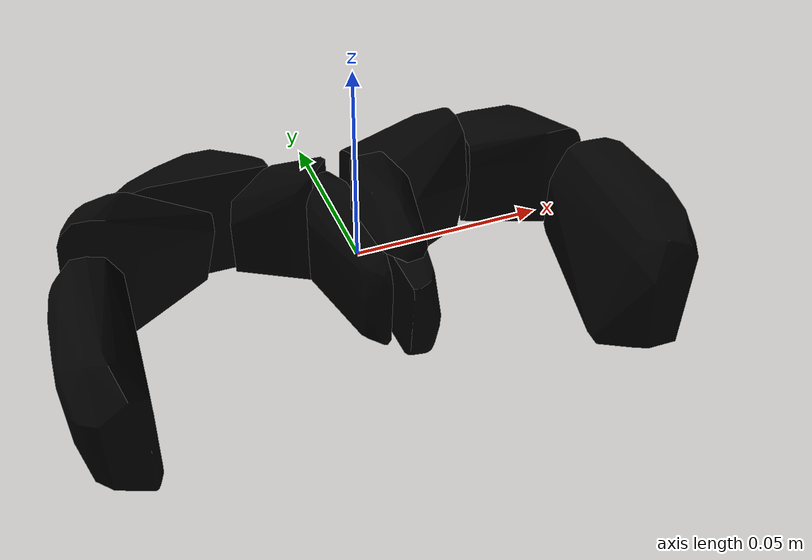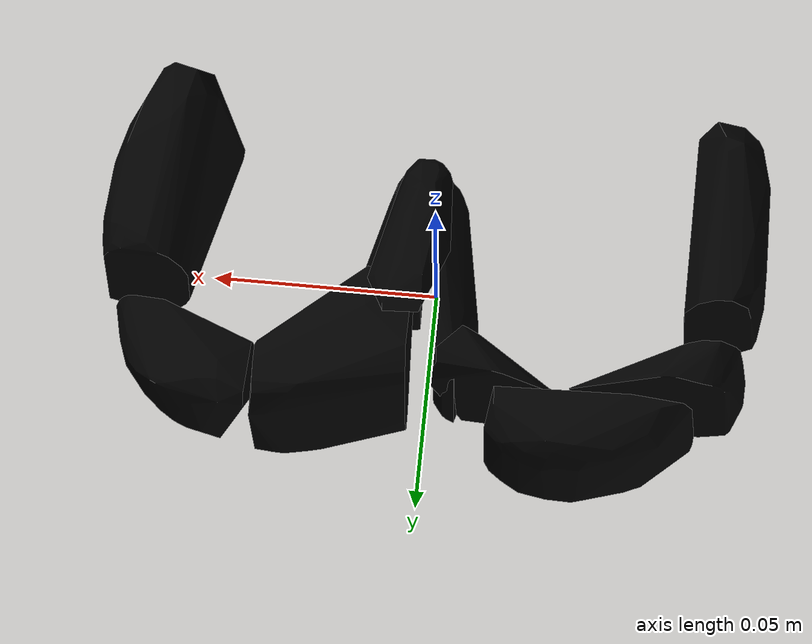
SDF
<?xml version="1.0"?>
<sdf version="1.7">
  <model name="t_shape">
    <link name="3_shape_video">
      <inertial>
        <pose>0 0 0 0 0 0</pose>
        <mass>1.0</mass>
        <!-- Inertia values were calculated to be consistent with the mass and
             geometry size, assuming a uniform density. -->
        <inertia>
            <ixx>0.003</ixx>
            <iyy>0.003 </iyy>
            <izz>0.006 </izz>
            <ixy>0.0</ixy>
            <ixz>0.0</ixz>
            <iyz>0.0</iyz>
        </inertia>
      </inertial>
      <visual name="convex_0">
  <pose>0 0 0 0 0 0</pose>
  <geometry>
    <mesh>
      <uri>3_shape_video_convex_0.obj</uri>
    </mesh>
  </geometry>
  <material>
    <diffuse>0 0 0 1</diffuse>
  </material>
</visual>
<collision name="convex_0_volume">
  <pose>0 0 0 0 0 0</pose>
  <geometry>
    <mesh>
      <uri>3_shape_video_convex_0.obj</uri>
    </mesh>
  </geometry>
  <drake:proximity_properties xmlns:drake="uri:drake">
    <drake:compliant_hydroelastic/>
    <drake:hydroelastic_modulus>3.0e7</drake:hydroelastic_modulus>
    <drake:mesh_resolution_hint>0.18</drake:mesh_resolution_hint>
    <drake:hunt_crossley_dissipation>10</drake:hunt_crossley_dissipation>
    <drake:mu_dynamic>0.3</drake:mu_dynamic>
  </drake:proximity_properties>
</collision>
<visual name="convex_1">
  <pose>0 0 0 0 0 0</pose>
  <geometry>
    <mesh>
      <uri>3_shape_video_convex_1.obj</uri>
    </mesh>
  </geometry>
  <material>
    <diffuse>0 0 0 1</diffuse>
  </material>
</visual>
<collision name="convex_1_volume">
  <pose>0 0 0 0 0 0</pose>
  <geometry>
    <mesh>
      <uri>3_shape_video_convex_1.obj</uri>
    </mesh>
  </geometry>
  <drake:proximity_properties xmlns:drake="uri:drake">
    <drake:compliant_hydroelastic/>
    <drake:hydroelastic_modulus>3.0e7</drake:hydroelastic_modulus>
    <drake:mesh_resolution_hint>0.18</drake:mesh_resolution_hint>
    <drake:hunt_crossley_dissipation>10</drake:hunt_crossley_dissipation>
    <drake:mu_dynamic>0.3</drake:mu_dynamic>
  </drake:proximity_properties>
</collision>
<visual name="convex_2">
  <pose>0 0 0 0 0 0</pose>
  <geometry>
    <mesh>
      <uri>3_shape_video_convex_2.obj</uri>
    </mesh>
  </geometry>
  <material>
    <diffuse>0 0 0 1</diffuse>
  </material>
</visual>
<collision name="convex_2_volume">
  <pose>0 0 0 0 0 0</pose>
  <geometry>
    <mesh>
      <uri>3_shape_video_convex_2.obj</uri>
    </mesh>
  </geometry>
  <drake:proximity_properties xmlns:drake="uri:drake">
    <drake:compliant_hydroelastic/>
    <drake:hydroelastic_modulus>3.0e7</drake:hydroelastic_modulus>
    <drake:mesh_resolution_hint>0.18</drake:mesh_resolution_hint>
    <drake:hunt_crossley_dissipation>10</drake:hunt_crossley_dissipation>
    <drake:mu_dynamic>0.3</drake:mu_dynamic>
  </drake:proximity_properties>
</collision>
<visual name="convex_3">
  <pose>0 0 0 0 0 0</pose>
  <geometry>
    <mesh>
      <uri>3_shape_video_convex_3.obj</uri>
    </mesh>
  </geometry>
  <material>
    <diffuse>0 0 0 1</diffuse>
  </material>
</visual>
<collision name="convex_3_volume">
  <pose>0 0 0 0 0 0</pose>
  <geometry>
    <mesh>
      <uri>3_shape_video_convex_3.obj</uri>
    </mesh>
  </geometry>
  <drake:proximity_properties xmlns:drake="uri:drake">
    <drake:compliant_hydroelastic/>
    <drake:hydroelastic_modulus>3.0e7</drake:hydroelastic_modulus>
    <drake:mesh_resolution_hint>0.18</drake:mesh_resolution_hint>
    <drake:hunt_crossley_dissipation>10</drake:hunt_crossley_dissipation>
    <drake:mu_dynamic>0.3</drake:mu_dynamic>
  </drake:proximity_properties>
</collision>
<visual name="convex_4">
  <pose>0 0 0 0 0 0</pose>
  <geometry>
    <mesh>
      <uri>3_shape_video_convex_4.obj</uri>
    </mesh>
  </geometry>
  <material>
    <diffuse>0 0 0 1</diffuse>
  </material>
</visual>
<collision name="convex_4_volume">
  <pose>0 0 0 0 0 0</pose>
  <geometry>
    <mesh>
      <uri>3_shape_video_convex_4.obj</uri>
    </mesh>
  </geometry>
  <drake:proximity_properties xmlns:drake="uri:drake">
    <drake:compliant_hydroelastic/>
    <drake:hydroelastic_modulus>3.0e7</drake:hydroelastic_modulus>
    <drake:mesh_resolution_hint>0.18</drake:mesh_resolution_hint>
    <drake:hunt_crossley_dissipation>10</drake:hunt_crossley_dissipation>
    <drake:mu_dynamic>0.3</drake:mu_dynamic>
  </drake:proximity_properties>
</collision>
<visual name="convex_5">
  <pose>0 0 0 0 0 0</pose>
  <geometry>
    <mesh>
      <uri>3_shape_video_convex_5.obj</uri>
    </mesh>
  </geometry>
  <material>
    <diffuse>0 0 0 1</diffuse>
  </material>
</visual>
<collision name="convex_5_volume">
  <pose>0 0 0 0 0 0</pose>
  <geometry>
    <mesh>
      <uri>3_shape_video_convex_5.obj</uri>
    </mesh>
  </geometry>
  <drake:proximity_properties xmlns:drake="uri:drake">
    <drake:compliant_hydroelastic/>
    <drake:hydroelastic_modulus>3.0e7</drake:hydroelastic_modulus>
    <drake:mesh_resolution_hint>0.18</drake:mesh_resolution_hint>
    <drake:hunt_crossley_dissipation>10</drake:hunt_crossley_dissipation>
    <drake:mu_dynamic>0.3</drake:mu_dynamic>
  </drake:proximity_properties>
</collision>
<visual name="convex_6">
  <pose>0 0 0 0 0 0</pose>
  <geometry>
    <mesh>
      <uri>3_shape_video_convex_6.obj</uri>
    </mesh>
  </geometry>
  <material>
    <diffuse>0 0 0 1</diffuse>
  </material>
</visual>
<collision name="convex_6_volume">
  <pose>0 0 0 0 0 0</pose>
  <geometry>
    <mesh>
      <uri>3_shape_video_convex_6.obj</uri>
    </mesh>
  </geometry>
  <drake:proximity_properties xmlns:drake="uri:drake">
    <drake:compliant_hydroelastic/>
    <drake:hydroelastic_modulus>3.0e7</drake:hydroelastic_modulus>
    <drake:mesh_resolution_hint>0.18</drake:mesh_resolution_hint>
    <drake:hunt_crossley_dissipation>10</drake:hunt_crossley_dissipation>
    <drake:mu_dynamic>0.3</drake:mu_dynamic>
  </drake:proximity_properties>
</collision>
<visual name="convex_7">
  <pose>0 0 0 0 0 0</pose>
  <geometry>
    <mesh>
      <uri>3_shape_video_convex_7.obj</uri>
    </mesh>
  </geometry>
  <material>
    <diffuse>0 0 0 1</diffuse>
  </material>
</visual>
<collision name="convex_7_volume">
  <pose>0 0 0 0 0 0</pose>
  <geometry>
    <mesh>
      <uri>3_shape_video_convex_7.obj</uri>
    </mesh>
  </geometry>
  <drake:proximity_properties xmlns:drake="uri:drake">
    <drake:compliant_hydroelastic/>
    <drake:hydroelastic_modulus>3.0e7</drake:hydroelastic_modulus>
    <drake:mesh_resolution_hint>0.18</drake:mesh_resolution_hint>
    <drake:hunt_crossley_dissipation>10</drake:hunt_crossley_dissipation>
    <drake:mu_dynamic>0.3</drake:mu_dynamic>
  </drake:proximity_properties>
</collision>
<visual name="convex_8">
  <pose>0 0 0 0 0 0</pose>
  <geometry>
    <mesh>
      <uri>3_shape_video_convex_8.obj</uri>
    </mesh>
  </geometry>
  <material>
    <diffuse>0 0 0 1</diffuse>
  </material>
</visual>
<collision name="convex_8_volume">
  <pose>0 0 0 0 0 0</pose>
  <geometry>
    <mesh>
      <uri>3_shape_video_convex_8.obj</uri>
    </mesh>
  </geometry>
  <drake:proximity_properties xmlns:drake="uri:drake">
    <drake:compliant_hydroelastic/>
    <drake:hydroelastic_modulus>3.0e7</drake:hydroelastic_modulus>
    <drake:mesh_resolution_hint>0.18</drake:mesh_resolution_hint>
    <drake:hunt_crossley_dissipation>10</drake:hunt_crossley_dissipation>
    <drake:mu_dynamic>0.3</drake:mu_dynamic>
  </drake:proximity_properties>
</collision>
<visual name="convex_9">
  <pose>0 0 0 0 0 0</pose>
  <geometry>
    <mesh>
      <uri>3_shape_video_convex_9.obj</uri>
    </mesh>
  </geometry>
  <material>
    <diffuse>0 0 0 1</diffuse>
  </material>
</visual>
<collision name="convex_9_volume">
  <pose>0 0 0 0 0 0</pose>
  <geometry>
    <mesh>
      <uri>3_shape_video_convex_9.obj</uri>
    </mesh>
  </geometry>
  <drake:proximity_properties xmlns:drake="uri:drake">
    <drake:compliant_hydroelastic/>
    <drake:hydroelastic_modulus>3.0e7</drake:hydroelastic_modulus>
    <drake:mesh_resolution_hint>0.18</drake:mesh_resolution_hint>
    <drake:hunt_crossley_dissipation>10</drake:hunt_crossley_dissipation>
    <drake:mu_dynamic>0.3</drake:mu_dynamic>
  </drake:proximity_properties>
</collision>

      <collision name="corner_nxynz_">
        <geometry>
          <sphere>
            <radius>0.001</radius>
          </sphere>
        </geometry>
        <drake:proximity_properties>
        <drake:mu_dynamic>0.3</drake:mu_dynamic>
        </drake:proximity_properties>
        <pose> -0.07886920 0.04628868 -0.02453861 0 0 0</pose>
      </collision>
      <collision name="corner_nxnynz">
        <geometry>
          <sphere>
            <radius>0.001</radius>
          </sphere>
        </geometry>
        <drake:proximity_properties>
        <drake:mu_dynamic>0.3</drake:mu_dynamic>
        </drake:proximity_properties>
        <pose> -0.07886920 -0.05574787 -0.02453861 0 0 0</pose>
      </collision>
      <collision name="corner_xynz">
        <geometry>
          <sphere>
            <radius>0.001</radius>
          </sphere>
        </geometry>
        <drake:proximity_properties>
        <drake:mu_dynamic>0.3</drake:mu_dynamic>
        </drake:proximity_properties>
        <pose> 0.07959715 -0.00472959 -0.02453861 0 0 0</pose>
      </collision>
    </link>
  </model>
</sdf>
